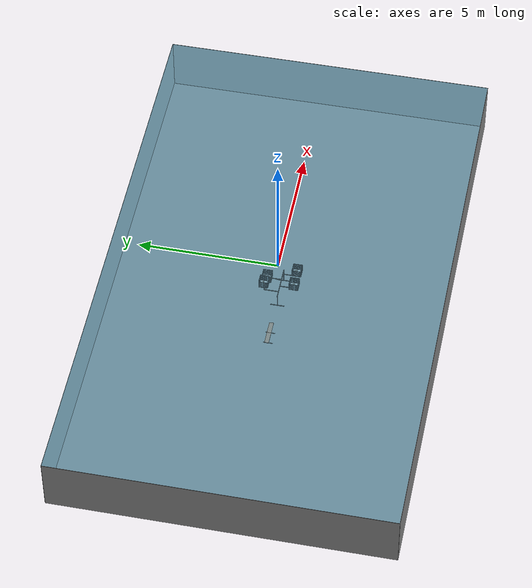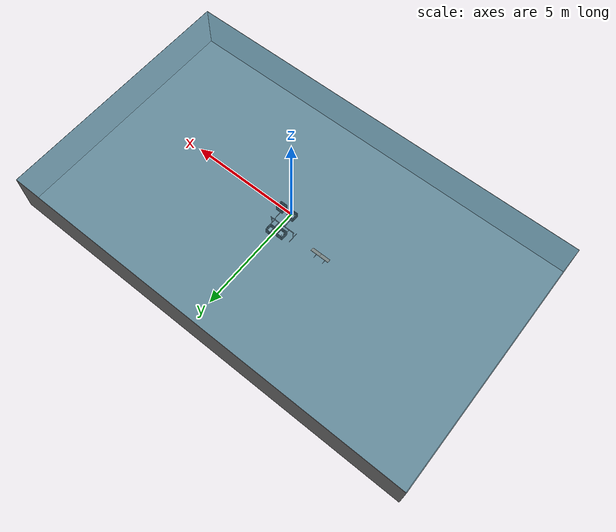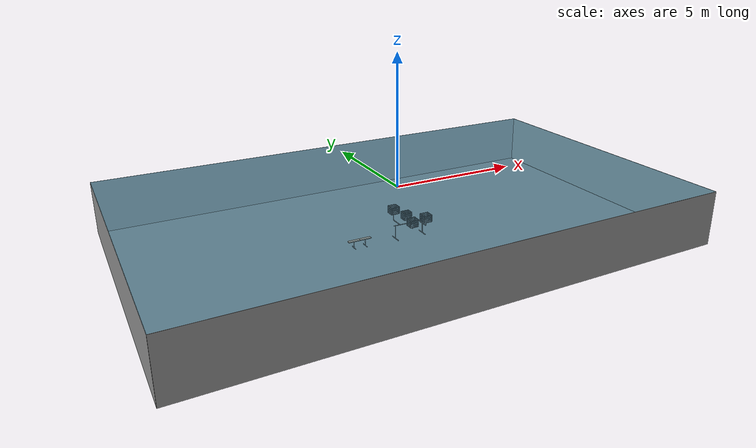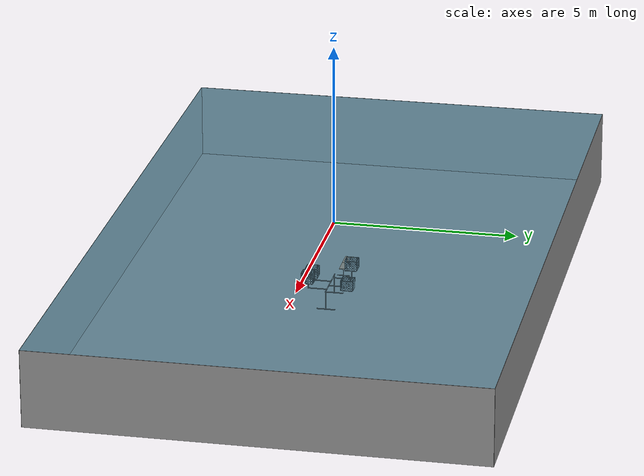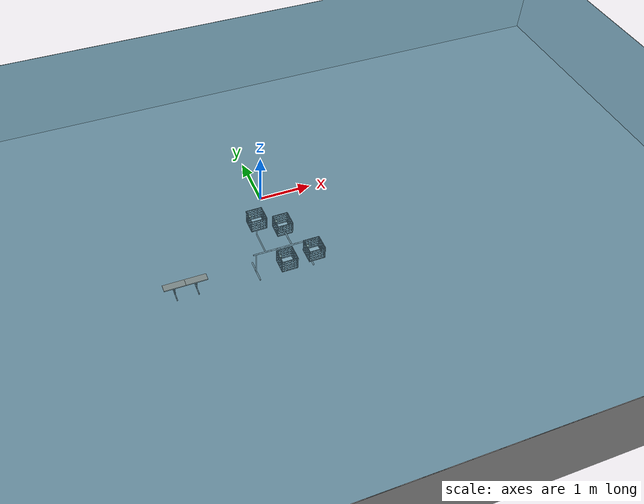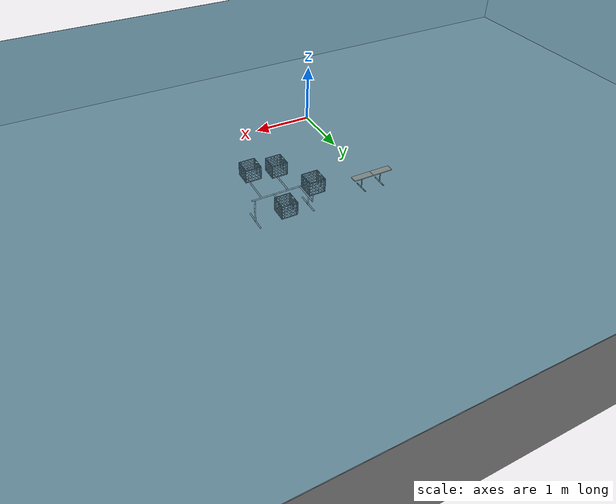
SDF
<sdf version="1.9">
 <world name="rs_task_bins">
  <plugin filename="gz-sim-particle-emitter-system" name="gz::sim::systems::ParticleEmitter"/>
  <plugin filename="gz-sim-physics-system" name="gz::sim::systems::Physics"/>
  <plugin filename="gz-sim-user-commands-system" name="gz::sim::systems::UserCommands"/>
  <plugin filename="gz-sim-scene-broadcaster-system" name="gz::sim::systems::SceneBroadcaster"/>
  <plugin filename="gz-sim-apply-link-wrench-system" name="gz::sim::systems::ApplyLinkWrench"/>
  <plugin filename="gz-sim-imu-system" name="gz::sim::systems::Imu"/>
  <plugin filename="gz-sim-sensors-system" name="gz::sim::systems::Sensors">
   <render_engine>ogre2</render_engine>
  </plugin>
  <plugin filename="gz-sim-dvl-system" name="gz::sim::systems::DopplerVelocityLogSystem"/>
  <plugin filename="gz-sim-buoyancy-system" name="gz::sim::systems::Buoyancy">
   <graded_buoyancy>
    <default_density>1000</default_density>
    <density_change><above_depth>0</above_depth><density>1</density></density_change>
   </graded_buoyancy>
   <enable>mongla</enable>
   <enable>payload_shot_0</enable>
   <enable>payload_shot_1</enable>
   <enable>payload_shot_2</enable>
   <enable>payload_shot_3</enable>
   <enable>payload_shot_4</enable>
   <enable>payload_shot_5</enable>
   <enable>payload_shot_6</enable>
   <enable>payload_shot_7</enable>
   <enable>payload_shot_8</enable>
   <enable>payload_shot_9</enable>
   <enable>payload_shot_10</enable>
   <enable>payload_shot_11</enable>
  </plugin>
  <physics name="default" type="dart">
   <max_step_size>0.001</max_step_size>
   <real_time_factor>1.0</real_time_factor>
   <real_time_update_rate>1000</real_time_update_rate>
   <dart>
    <collision_detector>bullet</collision_detector>
    <solver><solver_type>dantzig</solver_type></solver>
   </dart>
  </physics>
  <gravity>0 0 -9.81</gravity>
  <magnetic_field>3.9e-05 1.1e-06 2.6e-05</magnetic_field>
  <atmosphere type="adiabatic"/>
  <scene>
   <ambient>0.28 0.4 0.48 1</ambient>
   <background>0.08 0.26 0.4 1</background>
   <shadows>true</shadows>
   <fog>
    <color>0.14 0.34 0.42 1</color>
    <type>linear</type>
    <start>1.2</start>
    <end>22.0</end>
    <density>0.028</density>
   </fog>
  </scene>
  <light type="directional" name="sun">
   <pose>0 0 10 0 0 0</pose>
   <diffuse>0.48 0.52 0.56 1</diffuse>
   <specular>0.10 0.10 0.11 1</specular>
   <direction>-0.4 0.15 -0.9</direction>
  </light>
  <light type="directional" name="fill">
   <cast_shadows>false</cast_shadows>
   <pose>0 0 5 0 0 0</pose>
   <diffuse>0.22 0.28 0.34 1</diffuse>
   <specular>0.04 0.05 0.06 1</specular>
   <direction>0.3 -0.2 -1</direction>
  </light>
  <light type="directional" name="caustic_fill">
   <cast_shadows>false</cast_shadows>
   <pose>0 0 3 0 0 0</pose>
   <diffuse>0.12 0.22 0.26 1</diffuse>
   <specular>0.02 0.03 0.04 1</specular>
   <direction>0.1 0.35 -0.85</direction>
  </light>
  <model name="robosub_pool">
   <static>true</static>
   <link name="floor">
    <pose>0 0 -2.1 0 0 0</pose>
    <inertial>
     <mass>1000</mass>
     <inertia><ixx>1000</ixx><ixy>0</ixy><ixz>0</ixz><iyy>1000</iyy><iyz>0</iyz><izz>1000</izz></inertia>
    </inertial>
    <visual name="floor_visual">
     <pose>0 0 0.005 0 0 0</pose>
     <geometry><box><size>20 12 0.01</size></box></geometry>
     <material>
      <ambient>0.55 0.55 0.55 1</ambient>
      <diffuse>0.55 0.55 0.55 1</diffuse>
      <specular>0.08 0.08 0.08 1</specular>
      <emissive>0 0 0 1</emissive>
      <pbr>
       <metal>
        <albedo_map>model://robosub_textures/pool_floor.png</albedo_map>
        <metalness>0.0</metalness>
        <roughness>0.85</roughness>
       </metal>
      </pbr>
     </material>
    </visual>
    <collision name="floor_collision">
     <pose>0 0 -0.05 0 0 0</pose>
     <geometry><box><size>20 12 0.1</size></box></geometry>
    </collision>
   </link>
   <link name="wall_x_pos">
    <inertial>
     <mass>1000</mass>
     <inertia><ixx>1000</ixx><ixy>0</ixy><ixz>0</ixz><iyy>1000</iyy><iyz>0</iyz><izz>1000</izz></inertia>
    </inertial>
    <visual name="wall_x_pos_visual">
     <pose>10 0 -1.05 0 0 0</pose>
     <geometry><box><size>0.01 12 2.1</size></box></geometry>
     <material>
      <ambient>0.55 0.55 0.55 1</ambient>
      <diffuse>0.55 0.55 0.55 1</diffuse>
      <specular>0.08 0.08 0.08 1</specular>
      <emissive>0 0 0 1</emissive>
      <pbr>
       <metal>
        <albedo_map>model://robosub_textures/pool_wall_long.png</albedo_map>
        <metalness>0.0</metalness>
        <roughness>0.85</roughness>
       </metal>
      </pbr>
     </material>
    </visual>
    <collision name="wall_x_pos_collision">
     <pose>10.105 0 -1.05 0 0 0</pose>
     <geometry><box><size>0.2 12.4 2.1</size></box></geometry>
    </collision>
   </link>
   <link name="wall_x_neg">
    <inertial>
     <mass>1000</mass>
     <inertia><ixx>1000</ixx><ixy>0</ixy><ixz>0</ixz><iyy>1000</iyy><iyz>0</iyz><izz>1000</izz></inertia>
    </inertial>
    <visual name="wall_x_neg_visual">
     <pose>-10 0 -1.05 0 0 0</pose>
     <geometry><box><size>0.01 12 2.1</size></box></geometry>
     <material>
      <ambient>0.55 0.55 0.55 1</ambient>
      <diffuse>0.55 0.55 0.55 1</diffuse>
      <specular>0.08 0.08 0.08 1</specular>
      <emissive>0 0 0 1</emissive>
      <pbr>
       <metal>
        <albedo_map>model://robosub_textures/pool_wall_long.png</albedo_map>
        <metalness>0.0</metalness>
        <roughness>0.85</roughness>
       </metal>
      </pbr>
     </material>
    </visual>
    <collision name="wall_x_neg_collision">
     <pose>-10.105 0 -1.05 0 0 0</pose>
     <geometry><box><size>0.2 12.4 2.1</size></box></geometry>
    </collision>
   </link>
   <link name="wall_y_pos">
    <inertial>
     <mass>1000</mass>
     <inertia><ixx>1000</ixx><ixy>0</ixy><ixz>0</ixz><iyy>1000</iyy><iyz>0</iyz><izz>1000</izz></inertia>
    </inertial>
    <visual name="wall_y_pos_visual">
     <pose>0 6 -1.05 0 0 0</pose>
     <geometry><box><size>20 0.01 2.1</size></box></geometry>
     <material>
      <ambient>0.55 0.55 0.55 1</ambient>
      <diffuse>0.55 0.55 0.55 1</diffuse>
      <specular>0.08 0.08 0.08 1</specular>
      <emissive>0 0 0 1</emissive>
      <pbr>
       <metal>
        <albedo_map>model://robosub_textures/pool_wall_short.png</albedo_map>
        <metalness>0.0</metalness>
        <roughness>0.85</roughness>
       </metal>
      </pbr>
     </material>
    </visual>
    <collision name="wall_y_pos_collision">
     <pose>0 6.105 -1.05 0 0 0</pose>
     <geometry><box><size>20 0.2 2.1</size></box></geometry>
    </collision>
   </link>
   <link name="wall_y_neg">
    <inertial>
     <mass>1000</mass>
     <inertia><ixx>1000</ixx><ixy>0</ixy><ixz>0</ixz><iyy>1000</iyy><iyz>0</iyz><izz>1000</izz></inertia>
    </inertial>
    <visual name="wall_y_neg_visual">
     <pose>0 -6 -1.05 0 0 0</pose>
     <geometry><box><size>20 0.01 2.1</size></box></geometry>
     <material>
      <ambient>0.55 0.55 0.55 1</ambient>
      <diffuse>0.55 0.55 0.55 1</diffuse>
      <specular>0.08 0.08 0.08 1</specular>
      <emissive>0 0 0 1</emissive>
      <pbr>
       <metal>
        <albedo_map>model://robosub_textures/pool_wall_short.png</albedo_map>
        <metalness>0.0</metalness>
        <roughness>0.85</roughness>
       </metal>
      </pbr>
     </material>
    </visual>
    <collision name="wall_y_neg_collision">
     <pose>0 -6.105 -1.05 0 0 0</pose>
     <geometry><box><size>20 0.2 2.1</size></box></geometry>
    </collision>
   </link>
   <link name="water_surface">
    <inertial>
     <mass>1</mass>
     <inertia><ixx>1</ixx><ixy>0</ixy><ixz>0</ixz><iyy>1</iyy><iyz>0</iyz><izz>1</izz></inertia>
    </inertial>
    <visual name="water_surface_visual">
     <cast_shadows>false</cast_shadows>
     <transparency>0.18</transparency>
     <geometry><mesh><uri>model://robosub_meshes/meshes/water_robosub.obj</uri></mesh></geometry>
     <material>
      <ambient>0.42 0.6 0.68 1</ambient>
      <diffuse>0.42 0.6 0.68 1</diffuse>
      <specular>0.35 0.35 0.35 1</specular>
      <emissive>0.1 0.1 0.1 1</emissive>
      <pbr>
       <metal>
        <albedo_map>model://robosub_textures/water_surface.png</albedo_map>
        <metalness>0.0</metalness>
        <roughness>0.15</roughness>
       </metal>
      </pbr>
     </material>
    </visual>
   </link>
  </model>
  <model name="marine_snow">
   <static>true</static>
   <pose>0 0 -1.05 0 0 0</pose>
   <link name="link">
    <particle_emitter name="snow" type="box">
     <emitting>true</emitting>
     <size>12 12 2.1</size>
     <particle_size>0.006 0.006 0.006</particle_size>
     <lifetime>30</lifetime>
     <min_velocity>0.004</min_velocity>
     <max_velocity>0.025</max_velocity>
     <scale_rate>0</scale_rate>
     <rate>900</rate>
     <topic>marine_snow</topic>
     <material>
      <diffuse>0.80 0.84 0.80</diffuse>
      <specular>0.05 0.05 0.05</specular>
      <pbr><metal><albedo_map>model://robosub_textures/marine_snow.png</albedo_map></metal></pbr>
     </material>
    </particle_emitter>
   </link>
  </model>
  <include><uri>model://robosub_bins</uri><name>bins</name><pose>0.5 0 -2.1 0 0 0</pose></include>
  <include><uri>model://robosub_path_marker</uri><name>path_in</name><pose>-1.6 0 -2.1 0 0 0</pose></include>
 </world>
</sdf>

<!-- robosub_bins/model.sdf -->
<sdf version="1.9">
  <model name="robosub_bins">
    <static>true</static>
    <plugin filename="gz-sim-label-system" name="gz::sim::systems::Label">
      <label>14</label>
    </plugin>
    <link name="spine">
      <pose>0 0 0.55 0 1.5708 0</pose>
      <inertial>
        <pose>0 0 0 0 0 0</pose>
        <mass>1</mass>
        <inertia>
          <ixx>0.140878</ixx><ixy>0</ixy><ixz>0</ixz>
          <iyy>0.140878</iyy><iyz>0</iyz>
          <izz>8.8445e-05</izz>
        </inertia>
      </inertial>
      <visual name="spine_visual">
        <pose>0 0 0 0 0 0</pose>
        <geometry><cylinder><radius>0.0133</radius><length>1.3</length></cylinder></geometry>
        <material>
          <ambient>0.92 0.92 0.92 1</ambient>
          <diffuse>0.92 0.92 0.92 1</diffuse>
          <specular>0.55 0.55 0.55 1</specular>
          <emissive>0.258 0.258 0.258 1</emissive>
          <pbr>
            <metal>
              <albedo_map>model://robosub_textures/albedo_pvc.png</albedo_map>
              <metalness>0.0</metalness>
              <roughness_map>model://robosub_textures/rough_pvc.png</roughness_map>
              <normal_map>model://robosub_textures/norm_pvc.png</normal_map>
            </metal>
          </pbr>
        </material>
      </visual>
      <collision name="spine_collision">
        <pose>0 0 0 0 0 0</pose>
        <geometry><cylinder><radius>0.0133</radius><length>1.3</length></cylinder></geometry>
      </collision>
    </link>
    <link name="foot_riser_0">
      <pose>-0.590909 0 0.275 0 0 0</pose>
      <inertial>
        <pose>0 0 0 0 0 0</pose>
        <mass>1</mass>
        <inertia>
          <ixx>0.0252526</ixx><ixy>0</ixy><ixz>0</ixz>
          <iyy>0.0252526</iyy><iyz>0</iyz>
          <izz>8.8445e-05</izz>
        </inertia>
      </inertial>
      <visual name="foot_riser_0_visual">
        <pose>0 0 0 0 0 0</pose>
        <geometry><cylinder><radius>0.0133</radius><length>0.55</length></cylinder></geometry>
        <material>
          <ambient>0.92 0.92 0.92 1</ambient>
          <diffuse>0.92 0.92 0.92 1</diffuse>
          <specular>0.55 0.55 0.55 1</specular>
          <emissive>0.258 0.258 0.258 1</emissive>
          <pbr>
            <metal>
              <albedo_map>model://robosub_textures/albedo_pvc.png</albedo_map>
              <metalness>0.0</metalness>
              <roughness_map>model://robosub_textures/rough_pvc.png</roughness_map>
              <normal_map>model://robosub_textures/norm_pvc.png</normal_map>
            </metal>
          </pbr>
        </material>
      </visual>
      <collision name="foot_riser_0_collision">
        <pose>0 0 0 0 0 0</pose>
        <geometry><cylinder><radius>0.0133</radius><length>0.55</length></cylinder></geometry>
      </collision>
    </link>
    <link name="foot_0">
      <pose>-0.590909 0 0.03 1.5708 0 0</pose>
      <inertial>
        <pose>0 0 0 0 0 0</pose>
        <mass>1</mass>
        <inertia>
          <ixx>0.0208776</ixx><ixy>0</ixy><ixz>0</ixz>
          <iyy>0.0208776</iyy><iyz>0</iyz>
          <izz>8.8445e-05</izz>
        </inertia>
      </inertial>
      <visual name="foot_0_visual">
        <pose>0 0 0 0 0 0</pose>
        <geometry><cylinder><radius>0.0133</radius><length>0.5</length></cylinder></geometry>
        <material>
          <ambient>0.92 0.92 0.92 1</ambient>
          <diffuse>0.92 0.92 0.92 1</diffuse>
          <specular>0.55 0.55 0.55 1</specular>
          <emissive>0.258 0.258 0.258 1</emissive>
          <pbr>
            <metal>
              <albedo_map>model://robosub_textures/albedo_pvc.png</albedo_map>
              <metalness>0.0</metalness>
              <roughness_map>model://robosub_textures/rough_pvc.png</roughness_map>
              <normal_map>model://robosub_textures/norm_pvc.png</normal_map>
            </metal>
          </pbr>
        </material>
      </visual>
      <collision name="foot_0_collision">
        <pose>0 0 0 0 0 0</pose>
        <geometry><cylinder><radius>0.0133</radius><length>0.5</length></cylinder></geometry>
      </collision>
    </link>
    <link name="foot_riser_1">
      <pose>0.590909 0 0.275 0 0 0</pose>
      <inertial>
        <pose>0 0 0 0 0 0</pose>
        <mass>1</mass>
        <inertia>
          <ixx>0.0252526</ixx><ixy>0</ixy><ixz>0</ixz>
          <iyy>0.0252526</iyy><iyz>0</iyz>
          <izz>8.8445e-05</izz>
        </inertia>
      </inertial>
      <visual name="foot_riser_1_visual">
        <pose>0 0 0 0 0 0</pose>
        <geometry><cylinder><radius>0.0133</radius><length>0.55</length></cylinder></geometry>
        <material>
          <ambient>0.92 0.92 0.92 1</ambient>
          <diffuse>0.92 0.92 0.92 1</diffuse>
          <specular>0.55 0.55 0.55 1</specular>
          <emissive>0.258 0.258 0.258 1</emissive>
          <pbr>
            <metal>
              <albedo_map>model://robosub_textures/albedo_pvc.png</albedo_map>
              <metalness>0.0</metalness>
              <roughness_map>model://robosub_textures/rough_pvc.png</roughness_map>
              <normal_map>model://robosub_textures/norm_pvc.png</normal_map>
            </metal>
          </pbr>
        </material>
      </visual>
      <collision name="foot_riser_1_collision">
        <pose>0 0 0 0 0 0</pose>
        <geometry><cylinder><radius>0.0133</radius><length>0.55</length></cylinder></geometry>
      </collision>
    </link>
    <link name="foot_1">
      <pose>0.590909 0 0.03 1.5708 0 0</pose>
      <inertial>
        <pose>0 0 0 0 0 0</pose>
        <mass>1</mass>
        <inertia>
          <ixx>0.0208776</ixx><ixy>0</ixy><ixz>0</ixz>
          <iyy>0.0208776</iyy><iyz>0</iyz>
          <izz>8.8445e-05</izz>
        </inertia>
      </inertial>
      <visual name="foot_1_visual">
        <pose>0 0 0 0 0 0</pose>
        <geometry><cylinder><radius>0.0133</radius><length>0.5</length></cylinder></geometry>
        <material>
          <ambient>0.92 0.92 0.92 1</ambient>
          <diffuse>0.92 0.92 0.92 1</diffuse>
          <specular>0.55 0.55 0.55 1</specular>
          <emissive>0.258 0.258 0.258 1</emissive>
          <pbr>
            <metal>
              <albedo_map>model://robosub_textures/albedo_pvc.png</albedo_map>
              <metalness>0.0</metalness>
              <roughness_map>model://robosub_textures/rough_pvc.png</roughness_map>
              <normal_map>model://robosub_textures/norm_pvc.png</normal_map>
            </metal>
          </pbr>
        </material>
      </visual>
      <collision name="foot_1_collision">
        <pose>0 0 0 0 0 0</pose>
        <geometry><cylinder><radius>0.0133</radius><length>0.5</length></cylinder></geometry>
      </collision>
    </link>
    <link name="arm_sr_a">
      <pose>-0.39 0.26 0.55 1.5708 0 0</pose>
      <inertial>
        <pose>0 0 0 0 0 0</pose>
        <mass>1</mass>
        <inertia>
          <ixx>0.0225776</ixx><ixy>0</ixy><ixz>0</ixz>
          <iyy>0.0225776</iyy><iyz>0</iyz>
          <izz>8.8445e-05</izz>
        </inertia>
      </inertial>
      <visual name="arm_sr_a_visual">
        <pose>0 0 0 0 0 0</pose>
        <geometry><cylinder><radius>0.0133</radius><length>0.52</length></cylinder></geometry>
        <material>
          <ambient>0.92 0.92 0.92 1</ambient>
          <diffuse>0.92 0.92 0.92 1</diffuse>
          <specular>0.55 0.55 0.55 1</specular>
          <emissive>0.258 0.258 0.258 1</emissive>
          <pbr>
            <metal>
              <albedo_map>model://robosub_textures/albedo_pvc.png</albedo_map>
              <metalness>0.0</metalness>
              <roughness_map>model://robosub_textures/rough_pvc.png</roughness_map>
              <normal_map>model://robosub_textures/norm_pvc.png</normal_map>
            </metal>
          </pbr>
        </material>
      </visual>
      <collision name="arm_sr_a_collision">
        <pose>0 0 0 0 0 0</pose>
        <geometry><cylinder><radius>0.0133</radius><length>0.52</length></cylinder></geometry>
      </collision>
    </link>
    <link name="riser_sr_a">
      <pose>-0.39 0.52 0.7 0 0 0</pose>
      <inertial>
        <pose>0 0 0 0 0 0</pose>
        <mass>1</mass>
        <inertia>
          <ixx>0.00857756</ixx><ixy>0</ixy><ixz>0</ixz>
          <iyy>0.00857756</iyy><iyz>0</iyz>
          <izz>8.8445e-05</izz>
        </inertia>
      </inertial>
      <visual name="riser_sr_a_visual">
        <pose>0 0 0 0 0 0</pose>
        <geometry><cylinder><radius>0.0133</radius><length>0.32</length></cylinder></geometry>
        <material>
          <ambient>0.92 0.92 0.92 1</ambient>
          <diffuse>0.92 0.92 0.92 1</diffuse>
          <specular>0.55 0.55 0.55 1</specular>
          <emissive>0.258 0.258 0.258 1</emissive>
          <pbr>
            <metal>
              <albedo_map>model://robosub_textures/albedo_pvc.png</albedo_map>
              <metalness>0.0</metalness>
              <roughness_map>model://robosub_textures/rough_pvc.png</roughness_map>
              <normal_map>model://robosub_textures/norm_pvc.png</normal_map>
            </metal>
          </pbr>
        </material>
      </visual>
      <collision name="riser_sr_a_collision">
        <pose>0 0 0 0 0 0</pose>
        <geometry><cylinder><radius>0.0133</radius><length>0.32</length></cylinder></geometry>
      </collision>
    </link>
    <link name="crate_sr_a_floor">
      <pose>-0.39 0.52 0.85 0 0 0</pose>
      <inertial>
        <pose>0 0 0 0 0 0</pose>
        <mass>1</mass>
        <inertia>
          <ixx>0.00936408</ixx><ixy>0</ixy><ixz>0</ixz>
          <iyy>0.00936408</iyy><iyz>0</iyz>
          <izz>0.0187042</izz>
        </inertia>
      </inertial>
      <visual name="crate_sr_a_floor_visual">
        <pose>0 0 0 0 0 0</pose>
        <geometry><box><size>0.335 0.335 0.012</size></box></geometry>
        <material>
          <ambient>1 1 1 1</ambient>
          <diffuse>1 1 1 1</diffuse>
          <specular>0.06 0.06 0.06 1</specular>
          <emissive>0.1 0.1 0.1 1</emissive>
          <pbr>
            <metal>
              <albedo_map>model://robosub_textures/role_fire.png</albedo_map>
              <metalness>0.0</metalness>
              <roughness>0.55</roughness>
            </metal>
          </pbr>
        </material>
      </visual>
      <collision name="crate_sr_a_floor_collision">
        <pose>0 0 0 0 0 0</pose>
        <geometry><box><size>0.335 0.335 0.012</size></box></geometry>
      </collision>
    </link>
    <link name="crate_sr_a_xp">
      <pose>-0.2285 0.52 0.99 0 0 0</pose>
      <inertial>
        <pose>0 0 0 0 0 0</pose>
        <mass>0.5</mass>
        <inertia>
          <ixx>0.00794271</ixx><ixy>0</ixy><ixz>0</ixz>
          <iyy>0.00327267</iyy><iyz>0</iyz>
          <izz>0.00468204</izz>
        </inertia>
      </inertial>
      <visual name="crate_sr_a_xp_visual">
        <pose>0 0 0 0 0 0</pose>
        <geometry><mesh><uri>model://robosub_meshes/meshes/crate_wall.obj</uri></mesh></geometry>
        <material>
          <ambient>0.18 0.18 0.2 1</ambient>
          <diffuse>0.18 0.18 0.2 1</diffuse>
          <specular>0.14 0.14 0.14 1</specular>
          <emissive>0.04 0.04 0.04 1</emissive>
          <pbr>
            <metal>
              <albedo_map>model://robosub_textures/albedo_plastic.png</albedo_map>
              <metalness>0.0</metalness>
              <roughness_map>model://robosub_textures/rough_plastic.png</roughness_map>
              <normal_map>model://robosub_textures/norm_plastic.png</normal_map>
              <double_sided>true</double_sided>
            </metal>
          </pbr>
        </material>
      </visual>
      <collision name="crate_sr_a_xp_collision">
        <pose>0 0 0 0 0 0</pose>
        <geometry><box><size>0.012 0.335 0.28</size></box></geometry>
      </collision>
    </link>
    <link name="crate_sr_a_xn">
      <pose>-0.5515 0.52 0.99 0 0 0</pose>
      <inertial>
        <pose>0 0 0 0 0 0</pose>
        <mass>0.5</mass>
        <inertia>
          <ixx>0.00794271</ixx><ixy>0</ixy><ixz>0</ixz>
          <iyy>0.00327267</iyy><iyz>0</iyz>
          <izz>0.00468204</izz>
        </inertia>
      </inertial>
      <visual name="crate_sr_a_xn_visual">
        <pose>0 0 0 0 0 0</pose>
        <geometry><mesh><uri>model://robosub_meshes/meshes/crate_wall.obj</uri></mesh></geometry>
        <material>
          <ambient>0.18 0.18 0.2 1</ambient>
          <diffuse>0.18 0.18 0.2 1</diffuse>
          <specular>0.14 0.14 0.14 1</specular>
          <emissive>0.04 0.04 0.04 1</emissive>
          <pbr>
            <metal>
              <albedo_map>model://robosub_textures/albedo_plastic.png</albedo_map>
              <metalness>0.0</metalness>
              <roughness_map>model://robosub_textures/rough_plastic.png</roughness_map>
              <normal_map>model://robosub_textures/norm_plastic.png</normal_map>
              <double_sided>true</double_sided>
            </metal>
          </pbr>
        </material>
      </visual>
      <collision name="crate_sr_a_xn_collision">
        <pose>0 0 0 0 0 0</pose>
        <geometry><box><size>0.012 0.335 0.28</size></box></geometry>
      </collision>
    </link>
    <link name="crate_sr_a_yp">
      <pose>-0.39 0.6815 0.99 0 0 1.5708</pose>
      <inertial>
        <pose>0 0 0 0 0 0</pose>
        <mass>0.5</mass>
        <inertia>
          <ixx>0.00327267</ixx><ixy>0</ixy><ixz>0</ixz>
          <iyy>0.00794271</iyy><iyz>0</iyz>
          <izz>0.00468204</izz>
        </inertia>
      </inertial>
      <visual name="crate_sr_a_yp_visual">
        <pose>0 0 0 0 0 0</pose>
        <geometry><mesh><uri>model://robosub_meshes/meshes/crate_wall.obj</uri></mesh></geometry>
        <material>
          <ambient>0.18 0.18 0.2 1</ambient>
          <diffuse>0.18 0.18 0.2 1</diffuse>
          <specular>0.14 0.14 0.14 1</specular>
          <emissive>0.04 0.04 0.04 1</emissive>
          <pbr>
            <metal>
              <albedo_map>model://robosub_textures/albedo_plastic.png</albedo_map>
              <metalness>0.0</metalness>
              <roughness_map>model://robosub_textures/rough_plastic.png</roughness_map>
              <normal_map>model://robosub_textures/norm_plastic.png</normal_map>
              <double_sided>true</double_sided>
            </metal>
          </pbr>
        </material>
      </visual>
      <collision name="crate_sr_a_yp_collision">
        <pose>0 0 0 0 0 0</pose>
        <geometry><box><size>0.335 0.012 0.28</size></box></geometry>
      </collision>
    </link>
    <link name="crate_sr_a_yn">
      <pose>-0.39 0.3585 0.99 0 0 1.5708</pose>
      <inertial>
        <pose>0 0 0 0 0 0</pose>
        <mass>0.5</mass>
        <inertia>
          <ixx>0.00327267</ixx><ixy>0</ixy><ixz>0</ixz>
          <iyy>0.00794271</iyy><iyz>0</iyz>
          <izz>0.00468204</izz>
        </inertia>
      </inertial>
      <visual name="crate_sr_a_yn_visual">
        <pose>0 0 0 0 0 0</pose>
        <geometry><mesh><uri>model://robosub_meshes/meshes/crate_wall.obj</uri></mesh></geometry>
        <material>
          <ambient>0.18 0.18 0.2 1</ambient>
          <diffuse>0.18 0.18 0.2 1</diffuse>
          <specular>0.14 0.14 0.14 1</specular>
          <emissive>0.04 0.04 0.04 1</emissive>
          <pbr>
            <metal>
              <albedo_map>model://robosub_textures/albedo_plastic.png</albedo_map>
              <metalness>0.0</metalness>
              <roughness_map>model://robosub_textures/rough_plastic.png</roughness_map>
              <normal_map>model://robosub_textures/norm_plastic.png</normal_map>
              <double_sided>true</double_sided>
            </metal>
          </pbr>
        </material>
      </visual>
      <collision name="crate_sr_a_yn_collision">
        <pose>0 0 0 0 0 0</pose>
        <geometry><box><size>0.335 0.012 0.28</size></box></geometry>
      </collision>
    </link>
    <link name="light_sr_a">
      <pose>-0.5309 0.52 1.13 0 0 0</pose>
      <inertial>
        <pose>0 0 0 0 0 0</pose>
        <mass>0.05</mass>
        <inertia>
          <ixx>8.79883e-06</ixx><ixy>0</ixy><ixz>0</ixz>
          <iyy>8.79883e-06</iyy><iyz>0</iyz>
          <izz>1.59643e-05</izz>
        </inertia>
      </inertial>
      <visual name="light_sr_a_visual">
        <pose>0 0 0 0 0 0</pose>
        <geometry><cylinder><radius>0.02527</radius><length>0.014</length></cylinder></geometry>
        <material>
          <ambient>1 0.92 0.55 1</ambient>
          <diffuse>1 0.92 0.55 1</diffuse>
          <specular>0.2 0.2 0.2 1</specular>
          <emissive>0.85 0.782 0.4675 1</emissive>
        </material>
      </visual>
    </link>
    <link name="arm_rescue_a">
      <pose>-0.13 -0.26 0.55 1.5708 0 0</pose>
      <inertial>
        <pose>0 0 0 0 0 0</pose>
        <mass>1</mass>
        <inertia>
          <ixx>0.0225776</ixx><ixy>0</ixy><ixz>0</ixz>
          <iyy>0.0225776</iyy><iyz>0</iyz>
          <izz>8.8445e-05</izz>
        </inertia>
      </inertial>
      <visual name="arm_rescue_a_visual">
        <pose>0 0 0 0 0 0</pose>
        <geometry><cylinder><radius>0.0133</radius><length>0.52</length></cylinder></geometry>
        <material>
          <ambient>0.92 0.92 0.92 1</ambient>
          <diffuse>0.92 0.92 0.92 1</diffuse>
          <specular>0.55 0.55 0.55 1</specular>
          <emissive>0.258 0.258 0.258 1</emissive>
          <pbr>
            <metal>
              <albedo_map>model://robosub_textures/albedo_pvc.png</albedo_map>
              <metalness>0.0</metalness>
              <roughness_map>model://robosub_textures/rough_pvc.png</roughness_map>
              <normal_map>model://robosub_textures/norm_pvc.png</normal_map>
            </metal>
          </pbr>
        </material>
      </visual>
      <collision name="arm_rescue_a_collision">
        <pose>0 0 0 0 0 0</pose>
        <geometry><cylinder><radius>0.0133</radius><length>0.52</length></cylinder></geometry>
      </collision>
    </link>
    <link name="riser_rescue_a">
      <pose>-0.13 -0.52 0.6 0 0 0</pose>
      <inertial>
        <pose>0 0 0 0 0 0</pose>
        <mass>1</mass>
        <inertia>
          <ixx>0.00124422</ixx><ixy>0</ixy><ixz>0</ixz>
          <iyy>0.00124422</iyy><iyz>0</iyz>
          <izz>8.8445e-05</izz>
        </inertia>
      </inertial>
      <visual name="riser_rescue_a_visual">
        <pose>0 0 0 0 0 0</pose>
        <geometry><cylinder><radius>0.0133</radius><length>0.12</length></cylinder></geometry>
        <material>
          <ambient>0.92 0.92 0.92 1</ambient>
          <diffuse>0.92 0.92 0.92 1</diffuse>
          <specular>0.55 0.55 0.55 1</specular>
          <emissive>0.258 0.258 0.258 1</emissive>
          <pbr>
            <metal>
              <albedo_map>model://robosub_textures/albedo_pvc.png</albedo_map>
              <metalness>0.0</metalness>
              <roughness_map>model://robosub_textures/rough_pvc.png</roughness_map>
              <normal_map>model://robosub_textures/norm_pvc.png</normal_map>
            </metal>
          </pbr>
        </material>
      </visual>
      <collision name="riser_rescue_a_collision">
        <pose>0 0 0 0 0 0</pose>
        <geometry><cylinder><radius>0.0133</radius><length>0.12</length></cylinder></geometry>
      </collision>
    </link>
    <link name="crate_rescue_a_floor">
      <pose>-0.13 -0.52 0.65 0 0 0</pose>
      <inertial>
        <pose>0 0 0 0 0 0</pose>
        <mass>1</mass>
        <inertia>
          <ixx>0.00936408</ixx><ixy>0</ixy><ixz>0</ixz>
          <iyy>0.00936408</iyy><iyz>0</iyz>
          <izz>0.0187042</izz>
        </inertia>
      </inertial>
      <visual name="crate_rescue_a_floor_visual">
        <pose>0 0 0 0 0 0</pose>
        <geometry><box><size>0.335 0.335 0.012</size></box></geometry>
        <material>
          <ambient>1 1 1 1</ambient>
          <diffuse>1 1 1 1</diffuse>
          <specular>0.06 0.06 0.06 1</specular>
          <emissive>0.1 0.1 0.1 1</emissive>
          <pbr>
            <metal>
              <albedo_map>model://robosub_textures/role_droplet.png</albedo_map>
              <metalness>0.0</metalness>
              <roughness>0.55</roughness>
            </metal>
          </pbr>
        </material>
      </visual>
      <collision name="crate_rescue_a_floor_collision">
        <pose>0 0 0 0 0 0</pose>
        <geometry><box><size>0.335 0.335 0.012</size></box></geometry>
      </collision>
    </link>
    <link name="crate_rescue_a_xp">
      <pose>0.0315 -0.52 0.79 0 0 0</pose>
      <inertial>
        <pose>0 0 0 0 0 0</pose>
        <mass>0.5</mass>
        <inertia>
          <ixx>0.00794271</ixx><ixy>0</ixy><ixz>0</ixz>
          <iyy>0.00327267</iyy><iyz>0</iyz>
          <izz>0.00468204</izz>
        </inertia>
      </inertial>
      <visual name="crate_rescue_a_xp_visual">
        <pose>0 0 0 0 0 0</pose>
        <geometry><mesh><uri>model://robosub_meshes/meshes/crate_wall.obj</uri></mesh></geometry>
        <material>
          <ambient>0.18 0.18 0.2 1</ambient>
          <diffuse>0.18 0.18 0.2 1</diffuse>
          <specular>0.14 0.14 0.14 1</specular>
          <emissive>0.04 0.04 0.04 1</emissive>
          <pbr>
            <metal>
              <albedo_map>model://robosub_textures/albedo_plastic.png</albedo_map>
              <metalness>0.0</metalness>
              <roughness_map>model://robosub_textures/rough_plastic.png</roughness_map>
              <normal_map>model://robosub_textures/norm_plastic.png</normal_map>
              <double_sided>true</double_sided>
            </metal>
          </pbr>
        </material>
      </visual>
      <collision name="crate_rescue_a_xp_collision">
        <pose>0 0 0 0 0 0</pose>
        <geometry><box><size>0.012 0.335 0.28</size></box></geometry>
      </collision>
    </link>
    <link name="crate_rescue_a_xn">
      <pose>-0.2915 -0.52 0.79 0 0 0</pose>
      <inertial>
        <pose>0 0 0 0 0 0</pose>
        <mass>0.5</mass>
        <inertia>
          <ixx>0.00794271</ixx><ixy>0</ixy><ixz>0</ixz>
          <iyy>0.00327267</iyy><iyz>0</iyz>
          <izz>0.00468204</izz>
        </inertia>
      </inertial>
      <visual name="crate_rescue_a_xn_visual">
        <pose>0 0 0 0 0 0</pose>
        <geometry><mesh><uri>model://robosub_meshes/meshes/crate_wall.obj</uri></mesh></geometry>
        <material>
          <ambient>0.18 0.18 0.2 1</ambient>
          <diffuse>0.18 0.18 0.2 1</diffuse>
          <specular>0.14 0.14 0.14 1</specular>
          <emissive>0.04 0.04 0.04 1</emissive>
          <pbr>
            <metal>
              <albedo_map>model://robosub_textures/albedo_plastic.png</albedo_map>
              <metalness>0.0</metalness>
              <roughness_map>model://robosub_textures/rough_plastic.png</roughness_map>
              <normal_map>model://robosub_textures/norm_plastic.png</normal_map>
              <double_sided>true</double_sided>
            </metal>
          </pbr>
        </material>
      </visual>
      <collision name="crate_rescue_a_xn_collision">
        <pose>0 0 0 0 0 0</pose>
        <geometry><box><size>0.012 0.335 0.28</size></box></geometry>
      </collision>
    </link>
    <link name="crate_rescue_a_yp">
      <pose>-0.13 -0.3585 0.79 0 0 1.5708</pose>
      <inertial>
        <pose>0 0 0 0 0 0</pose>
        <mass>0.5</mass>
        <inertia>
          <ixx>0.00327267</ixx><ixy>0</ixy><ixz>0</ixz>
          <iyy>0.00794271</iyy><iyz>0</iyz>
          <izz>0.00468204</izz>
        </inertia>
      </inertial>
      <visual name="crate_rescue_a_yp_visual">
        <pose>0 0 0 0 0 0</pose>
        <geometry><mesh><uri>model://robosub_meshes/meshes/crate_wall.obj</uri></mesh></geometry>
        <material>
          <ambient>0.18 0.18 0.2 1</ambient>
          <diffuse>0.18 0.18 0.2 1</diffuse>
          <specular>0.14 0.14 0.14 1</specular>
          <emissive>0.04 0.04 0.04 1</emissive>
          <pbr>
            <metal>
              <albedo_map>model://robosub_textures/albedo_plastic.png</albedo_map>
              <metalness>0.0</metalness>
              <roughness_map>model://robosub_textures/rough_plastic.png</roughness_map>
              <normal_map>model://robosub_textures/norm_plastic.png</normal_map>
              <double_sided>true</double_sided>
            </metal>
          </pbr>
        </material>
      </visual>
      <collision name="crate_rescue_a_yp_collision">
        <pose>0 0 0 0 0 0</pose>
        <geometry><box><size>0.335 0.012 0.28</size></box></geometry>
      </collision>
    </link>
    <link name="crate_rescue_a_yn">
      <pose>-0.13 -0.6815 0.79 0 0 1.5708</pose>
      <inertial>
        <pose>0 0 0 0 0 0</pose>
        <mass>0.5</mass>
        <inertia>
          <ixx>0.00327267</ixx><ixy>0</ixy><ixz>0</ixz>
          <iyy>0.00794271</iyy><iyz>0</iyz>
          <izz>0.00468204</izz>
        </inertia>
      </inertial>
      <visual name="crate_rescue_a_yn_visual">
        <pose>0 0 0 0 0 0</pose>
        <geometry><mesh><uri>model://robosub_meshes/meshes/crate_wall.obj</uri></mesh></geometry>
        <material>
          <ambient>0.18 0.18 0.2 1</ambient>
          <diffuse>0.18 0.18 0.2 1</diffuse>
          <specular>0.14 0.14 0.14 1</specular>
          <emissive>0.04 0.04 0.04 1</emissive>
          <pbr>
            <metal>
              <albedo_map>model://robosub_textures/albedo_plastic.png</albedo_map>
              <metalness>0.0</metalness>
              <roughness_map>model://robosub_textures/rough_plastic.png</roughness_map>
              <normal_map>model://robosub_textures/norm_plastic.png</normal_map>
              <double_sided>true</double_sided>
            </metal>
          </pbr>
        </material>
      </visual>
      <collision name="crate_rescue_a_yn_collision">
        <pose>0 0 0 0 0 0</pose>
        <geometry><box><size>0.335 0.012 0.28</size></box></geometry>
      </collision>
    </link>
    <link name="light_rescue_a">
      <pose>-0.2709 -0.52 0.93 0 0 0</pose>
      <inertial>
        <pose>0 0 0 0 0 0</pose>
        <mass>0.05</mass>
        <inertia>
          <ixx>8.79883e-06</ixx><ixy>0</ixy><ixz>0</ixz>
          <iyy>8.79883e-06</iyy><iyz>0</iyz>
          <izz>1.59643e-05</izz>
        </inertia>
      </inertial>
      <visual name="light_rescue_a_visual">
        <pose>0 0 0 0 0 0</pose>
        <geometry><cylinder><radius>0.02527</radius><length>0.014</length></cylinder></geometry>
        <material>
          <ambient>1 0.92 0.55 1</ambient>
          <diffuse>1 0.92 0.55 1</diffuse>
          <specular>0.2 0.2 0.2 1</specular>
          <emissive>0.85 0.782 0.4675 1</emissive>
        </material>
      </visual>
    </link>
    <link name="arm_sr_b">
      <pose>0.182 0.26 0.55 1.5708 0 0</pose>
      <inertial>
        <pose>0 0 0 0 0 0</pose>
        <mass>1</mass>
        <inertia>
          <ixx>0.0225776</ixx><ixy>0</ixy><ixz>0</ixz>
          <iyy>0.0225776</iyy><iyz>0</iyz>
          <izz>8.8445e-05</izz>
        </inertia>
      </inertial>
      <visual name="arm_sr_b_visual">
        <pose>0 0 0 0 0 0</pose>
        <geometry><cylinder><radius>0.0133</radius><length>0.52</length></cylinder></geometry>
        <material>
          <ambient>0.92 0.92 0.92 1</ambient>
          <diffuse>0.92 0.92 0.92 1</diffuse>
          <specular>0.55 0.55 0.55 1</specular>
          <emissive>0.258 0.258 0.258 1</emissive>
          <pbr>
            <metal>
              <albedo_map>model://robosub_textures/albedo_pvc.png</albedo_map>
              <metalness>0.0</metalness>
              <roughness_map>model://robosub_textures/rough_pvc.png</roughness_map>
              <normal_map>model://robosub_textures/norm_pvc.png</normal_map>
            </metal>
          </pbr>
        </material>
      </visual>
      <collision name="arm_sr_b_collision">
        <pose>0 0 0 0 0 0</pose>
        <geometry><cylinder><radius>0.0133</radius><length>0.52</length></cylinder></geometry>
      </collision>
    </link>
    <link name="riser_sr_b">
      <pose>0.182 0.52 0.525 0 0 0</pose>
      <inertial>
        <pose>0 0 0 0 0 0</pose>
        <mass>1</mass>
        <inertia>
          <ixx>0.000452556</ixx><ixy>0</ixy><ixz>0</ixz>
          <iyy>0.000452556</iyy><iyz>0</iyz>
          <izz>8.8445e-05</izz>
        </inertia>
      </inertial>
      <visual name="riser_sr_b_visual">
        <pose>0 0 0 0 0 0</pose>
        <geometry><cylinder><radius>0.0133</radius><length>0.07</length></cylinder></geometry>
        <material>
          <ambient>0.92 0.92 0.92 1</ambient>
          <diffuse>0.92 0.92 0.92 1</diffuse>
          <specular>0.55 0.55 0.55 1</specular>
          <emissive>0.258 0.258 0.258 1</emissive>
          <pbr>
            <metal>
              <albedo_map>model://robosub_textures/albedo_pvc.png</albedo_map>
              <metalness>0.0</metalness>
              <roughness_map>model://robosub_textures/rough_pvc.png</roughness_map>
              <normal_map>model://robosub_textures/norm_pvc.png</normal_map>
            </metal>
          </pbr>
        </material>
      </visual>
      <collision name="riser_sr_b_collision">
        <pose>0 0 0 0 0 0</pose>
        <geometry><cylinder><radius>0.0133</radius><length>0.07</length></cylinder></geometry>
      </collision>
    </link>
    <link name="crate_sr_b_floor">
      <pose>0.182 0.52 0.5 0 0 0</pose>
      <inertial>
        <pose>0 0 0 0 0 0</pose>
        <mass>1</mass>
        <inertia>
          <ixx>0.00936408</ixx><ixy>0</ixy><ixz>0</ixz>
          <iyy>0.00936408</iyy><iyz>0</iyz>
          <izz>0.0187042</izz>
        </inertia>
      </inertial>
      <visual name="crate_sr_b_floor_visual">
        <pose>0 0 0 0 0 0</pose>
        <geometry><box><size>0.335 0.335 0.012</size></box></geometry>
        <material>
          <ambient>1 1 1 1</ambient>
          <diffuse>1 1 1 1</diffuse>
          <specular>0.06 0.06 0.06 1</specular>
          <emissive>0.1 0.1 0.1 1</emissive>
          <pbr>
            <metal>
              <albedo_map>model://robosub_textures/role_fire.png</albedo_map>
              <metalness>0.0</metalness>
              <roughness>0.55</roughness>
            </metal>
          </pbr>
        </material>
      </visual>
      <collision name="crate_sr_b_floor_collision">
        <pose>0 0 0 0 0 0</pose>
        <geometry><box><size>0.335 0.335 0.012</size></box></geometry>
      </collision>
    </link>
    <link name="crate_sr_b_xp">
      <pose>0.3435 0.52 0.64 0 0 0</pose>
      <inertial>
        <pose>0 0 0 0 0 0</pose>
        <mass>0.5</mass>
        <inertia>
          <ixx>0.00794271</ixx><ixy>0</ixy><ixz>0</ixz>
          <iyy>0.00327267</iyy><iyz>0</iyz>
          <izz>0.00468204</izz>
        </inertia>
      </inertial>
      <visual name="crate_sr_b_xp_visual">
        <pose>0 0 0 0 0 0</pose>
        <geometry><mesh><uri>model://robosub_meshes/meshes/crate_wall.obj</uri></mesh></geometry>
        <material>
          <ambient>0.18 0.18 0.2 1</ambient>
          <diffuse>0.18 0.18 0.2 1</diffuse>
          <specular>0.14 0.14 0.14 1</specular>
          <emissive>0.04 0.04 0.04 1</emissive>
          <pbr>
            <metal>
              <albedo_map>model://robosub_textures/albedo_plastic.png</albedo_map>
              <metalness>0.0</metalness>
              <roughness_map>model://robosub_textures/rough_plastic.png</roughness_map>
              <normal_map>model://robosub_textures/norm_plastic.png</normal_map>
              <double_sided>true</double_sided>
            </metal>
          </pbr>
        </material>
      </visual>
      <collision name="crate_sr_b_xp_collision">
        <pose>0 0 0 0 0 0</pose>
        <geometry><box><size>0.012 0.335 0.28</size></box></geometry>
      </collision>
    </link>
    <link name="crate_sr_b_xn">
      <pose>0.0205 0.52 0.64 0 0 0</pose>
      <inertial>
        <pose>0 0 0 0 0 0</pose>
        <mass>0.5</mass>
        <inertia>
          <ixx>0.00794271</ixx><ixy>0</ixy><ixz>0</ixz>
          <iyy>0.00327267</iyy><iyz>0</iyz>
          <izz>0.00468204</izz>
        </inertia>
      </inertial>
      <visual name="crate_sr_b_xn_visual">
        <pose>0 0 0 0 0 0</pose>
        <geometry><mesh><uri>model://robosub_meshes/meshes/crate_wall.obj</uri></mesh></geometry>
        <material>
          <ambient>0.18 0.18 0.2 1</ambient>
          <diffuse>0.18 0.18 0.2 1</diffuse>
          <specular>0.14 0.14 0.14 1</specular>
          <emissive>0.04 0.04 0.04 1</emissive>
          <pbr>
            <metal>
              <albedo_map>model://robosub_textures/albedo_plastic.png</albedo_map>
              <metalness>0.0</metalness>
              <roughness_map>model://robosub_textures/rough_plastic.png</roughness_map>
              <normal_map>model://robosub_textures/norm_plastic.png</normal_map>
              <double_sided>true</double_sided>
            </metal>
          </pbr>
        </material>
      </visual>
      <collision name="crate_sr_b_xn_collision">
        <pose>0 0 0 0 0 0</pose>
        <geometry><box><size>0.012 0.335 0.28</size></box></geometry>
      </collision>
    </link>
    <link name="crate_sr_b_yp">
      <pose>0.182 0.6815 0.64 0 0 1.5708</pose>
      <inertial>
        <pose>0 0 0 0 0 0</pose>
        <mass>0.5</mass>
        <inertia>
          <ixx>0.00327267</ixx><ixy>0</ixy><ixz>0</ixz>
          <iyy>0.00794271</iyy><iyz>0</iyz>
          <izz>0.00468204</izz>
        </inertia>
      </inertial>
      <visual name="crate_sr_b_yp_visual">
        <pose>0 0 0 0 0 0</pose>
        <geometry><mesh><uri>model://robosub_meshes/meshes/crate_wall.obj</uri></mesh></geometry>
        <material>
          <ambient>0.18 0.18 0.2 1</ambient>
          <diffuse>0.18 0.18 0.2 1</diffuse>
          <specular>0.14 0.14 0.14 1</specular>
          <emissive>0.04 0.04 0.04 1</emissive>
          <pbr>
            <metal>
              <albedo_map>model://robosub_textures/albedo_plastic.png</albedo_map>
              <metalness>0.0</metalness>
              <roughness_map>model://robosub_textures/rough_plastic.png</roughness_map>
              <normal_map>model://robosub_textures/norm_plastic.png</normal_map>
              <double_sided>true</double_sided>
            </metal>
          </pbr>
        </material>
      </visual>
      <collision name="crate_sr_b_yp_collision">
        <pose>0 0 0 0 0 0</pose>
        <geometry><box><size>0.335 0.012 0.28</size></box></geometry>
      </collision>
    </link>
    <link name="crate_sr_b_yn">
      <pose>0.182 0.3585 0.64 0 0 1.5708</pose>
      <inertial>
        <pose>0 0 0 0 0 0</pose>
        <mass>0.5</mass>
        <inertia>
          <ixx>0.00327267</ixx><ixy>0</ixy><ixz>0</ixz>
          <iyy>0.00794271</iyy><iyz>0</iyz>
          <izz>0.00468204</izz>
        </inertia>
      </inertial>
      <visual name="crate_sr_b_yn_visual">
        <pose>0 0 0 0 0 0</pose>
        <geometry><mesh><uri>model://robosub_meshes/meshes/crate_wall.obj</uri></mesh></geometry>
        <material>
          <ambient>0.18 0.18 0.2 1</ambient>
          <diffuse>0.18 0.18 0.2 1</diffuse>
          <specular>0.14 0.14 0.14 1</specular>
          <emissive>0.04 0.04 0.04 1</emissive>
          <pbr>
            <metal>
              <albedo_map>model://robosub_textures/albedo_plastic.png</albedo_map>
              <metalness>0.0</metalness>
              <roughness_map>model://robosub_textures/rough_plastic.png</roughness_map>
              <normal_map>model://robosub_textures/norm_plastic.png</normal_map>
              <double_sided>true</double_sided>
            </metal>
          </pbr>
        </material>
      </visual>
      <collision name="crate_sr_b_yn_collision">
        <pose>0 0 0 0 0 0</pose>
        <geometry><box><size>0.335 0.012 0.28</size></box></geometry>
      </collision>
    </link>
    <link name="light_sr_b">
      <pose>0.0411 0.52 0.78 0 0 0</pose>
      <inertial>
        <pose>0 0 0 0 0 0</pose>
        <mass>0.05</mass>
        <inertia>
          <ixx>8.79883e-06</ixx><ixy>0</ixy><ixz>0</ixz>
          <iyy>8.79883e-06</iyy><iyz>0</iyz>
          <izz>1.59643e-05</izz>
        </inertia>
      </inertial>
      <visual name="light_sr_b_visual">
        <pose>0 0 0 0 0 0</pose>
        <geometry><cylinder><radius>0.02527</radius><length>0.014</length></cylinder></geometry>
        <material>
          <ambient>1 0.92 0.55 1</ambient>
          <diffuse>1 0.92 0.55 1</diffuse>
          <specular>0.2 0.2 0.2 1</specular>
          <emissive>0.85 0.782 0.4675 1</emissive>
        </material>
      </visual>
    </link>
    <link name="arm_rescue_b">
      <pose>0.442 -0.26 0.55 1.5708 0 0</pose>
      <inertial>
        <pose>0 0 0 0 0 0</pose>
        <mass>1</mass>
        <inertia>
          <ixx>0.0225776</ixx><ixy>0</ixy><ixz>0</ixz>
          <iyy>0.0225776</iyy><iyz>0</iyz>
          <izz>8.8445e-05</izz>
        </inertia>
      </inertial>
      <visual name="arm_rescue_b_visual">
        <pose>0 0 0 0 0 0</pose>
        <geometry><cylinder><radius>0.0133</radius><length>0.52</length></cylinder></geometry>
        <material>
          <ambient>0.92 0.92 0.92 1</ambient>
          <diffuse>0.92 0.92 0.92 1</diffuse>
          <specular>0.55 0.55 0.55 1</specular>
          <emissive>0.258 0.258 0.258 1</emissive>
          <pbr>
            <metal>
              <albedo_map>model://robosub_textures/albedo_pvc.png</albedo_map>
              <metalness>0.0</metalness>
              <roughness_map>model://robosub_textures/rough_pvc.png</roughness_map>
              <normal_map>model://robosub_textures/norm_pvc.png</normal_map>
            </metal>
          </pbr>
        </material>
      </visual>
      <collision name="arm_rescue_b_collision">
        <pose>0 0 0 0 0 0</pose>
        <geometry><cylinder><radius>0.0133</radius><length>0.52</length></cylinder></geometry>
      </collision>
    </link>
    <link name="riser_rescue_b">
      <pose>0.442 -0.52 0.64 0 0 0</pose>
      <inertial>
        <pose>0 0 0 0 0 0</pose>
        <mass>1</mass>
        <inertia>
          <ixx>0.00337756</ixx><ixy>0</ixy><ixz>0</ixz>
          <iyy>0.00337756</iyy><iyz>0</iyz>
          <izz>8.8445e-05</izz>
        </inertia>
      </inertial>
      <visual name="riser_rescue_b_visual">
        <pose>0 0 0 0 0 0</pose>
        <geometry><cylinder><radius>0.0133</radius><length>0.2</length></cylinder></geometry>
        <material>
          <ambient>0.92 0.92 0.92 1</ambient>
          <diffuse>0.92 0.92 0.92 1</diffuse>
          <specular>0.55 0.55 0.55 1</specular>
          <emissive>0.258 0.258 0.258 1</emissive>
          <pbr>
            <metal>
              <albedo_map>model://robosub_textures/albedo_pvc.png</albedo_map>
              <metalness>0.0</metalness>
              <roughness_map>model://robosub_textures/rough_pvc.png</roughness_map>
              <normal_map>model://robosub_textures/norm_pvc.png</normal_map>
            </metal>
          </pbr>
        </material>
      </visual>
      <collision name="riser_rescue_b_collision">
        <pose>0 0 0 0 0 0</pose>
        <geometry><cylinder><radius>0.0133</radius><length>0.2</length></cylinder></geometry>
      </collision>
    </link>
    <link name="crate_rescue_b_floor">
      <pose>0.442 -0.52 0.73 0 0 0</pose>
      <inertial>
        <pose>0 0 0 0 0 0</pose>
        <mass>1</mass>
        <inertia>
          <ixx>0.00936408</ixx><ixy>0</ixy><ixz>0</ixz>
          <iyy>0.00936408</iyy><iyz>0</iyz>
          <izz>0.0187042</izz>
        </inertia>
      </inertial>
      <visual name="crate_rescue_b_floor_visual">
        <pose>0 0 0 0 0 0</pose>
        <geometry><box><size>0.335 0.335 0.012</size></box></geometry>
        <material>
          <ambient>1 1 1 1</ambient>
          <diffuse>1 1 1 1</diffuse>
          <specular>0.06 0.06 0.06 1</specular>
          <emissive>0.1 0.1 0.1 1</emissive>
          <pbr>
            <metal>
              <albedo_map>model://robosub_textures/role_droplet.png</albedo_map>
              <metalness>0.0</metalness>
              <roughness>0.55</roughness>
            </metal>
          </pbr>
        </material>
      </visual>
      <collision name="crate_rescue_b_floor_collision">
        <pose>0 0 0 0 0 0</pose>
        <geometry><box><size>0.335 0.335 0.012</size></box></geometry>
      </collision>
    </link>
    <link name="crate_rescue_b_xp">
      <pose>0.6035 -0.52 0.87 0 0 0</pose>
      <inertial>
        <pose>0 0 0 0 0 0</pose>
        <mass>0.5</mass>
        <inertia>
          <ixx>0.00794271</ixx><ixy>0</ixy><ixz>0</ixz>
          <iyy>0.00327267</iyy><iyz>0</iyz>
          <izz>0.00468204</izz>
        </inertia>
      </inertial>
      <visual name="crate_rescue_b_xp_visual">
        <pose>0 0 0 0 0 0</pose>
        <geometry><mesh><uri>model://robosub_meshes/meshes/crate_wall.obj</uri></mesh></geometry>
        <material>
          <ambient>0.18 0.18 0.2 1</ambient>
          <diffuse>0.18 0.18 0.2 1</diffuse>
          <specular>0.14 0.14 0.14 1</specular>
          <emissive>0.04 0.04 0.04 1</emissive>
          <pbr>
            <metal>
              <albedo_map>model://robosub_textures/albedo_plastic.png</albedo_map>
              <metalness>0.0</metalness>
              <roughness_map>model://robosub_textures/rough_plastic.png</roughness_map>
              <normal_map>model://robosub_textures/norm_plastic.png</normal_map>
              <double_sided>true</double_sided>
            </metal>
          </pbr>
        </material>
      </visual>
      <collision name="crate_rescue_b_xp_collision">
        <pose>0 0 0 0 0 0</pose>
        <geometry><box><size>0.012 0.335 0.28</size></box></geometry>
      </collision>
    </link>
    <link name="crate_rescue_b_xn">
      <pose>0.2805 -0.52 0.87 0 0 0</pose>
      <inertial>
        <pose>0 0 0 0 0 0</pose>
        <mass>0.5</mass>
        <inertia>
          <ixx>0.00794271</ixx><ixy>0</ixy><ixz>0</ixz>
          <iyy>0.00327267</iyy><iyz>0</iyz>
          <izz>0.00468204</izz>
        </inertia>
      </inertial>
      <visual name="crate_rescue_b_xn_visual">
        <pose>0 0 0 0 0 0</pose>
        <geometry><mesh><uri>model://robosub_meshes/meshes/crate_wall.obj</uri></mesh></geometry>
        <material>
          <ambient>0.18 0.18 0.2 1</ambient>
          <diffuse>0.18 0.18 0.2 1</diffuse>
          <specular>0.14 0.14 0.14 1</specular>
          <emissive>0.04 0.04 0.04 1</emissive>
          <pbr>
            <metal>
              <albedo_map>model://robosub_textures/albedo_plastic.png</albedo_map>
              <metalness>0.0</metalness>
              <roughness_map>model://robosub_textures/rough_plastic.png</roughness_map>
              <normal_map>model://robosub_textures/norm_plastic.png</normal_map>
              <double_sided>true</double_sided>
            </metal>
          </pbr>
        </material>
      </visual>
      <collision name="crate_rescue_b_xn_collision">
        <pose>0 0 0 0 0 0</pose>
        <geometry><box><size>0.012 0.335 0.28</size></box></geometry>
      </collision>
    </link>
    <link name="crate_rescue_b_yp">
      <pose>0.442 -0.3585 0.87 0 0 1.5708</pose>
      <inertial>
        <pose>0 0 0 0 0 0</pose>
        <mass>0.5</mass>
        <inertia>
          <ixx>0.00327267</ixx><ixy>0</ixy><ixz>0</ixz>
          <iyy>0.00794271</iyy><iyz>0</iyz>
          <izz>0.00468204</izz>
        </inertia>
      </inertial>
      <visual name="crate_rescue_b_yp_visual">
        <pose>0 0 0 0 0 0</pose>
        <geometry><mesh><uri>model://robosub_meshes/meshes/crate_wall.obj</uri></mesh></geometry>
        <material>
          <ambient>0.18 0.18 0.2 1</ambient>
          <diffuse>0.18 0.18 0.2 1</diffuse>
          <specular>0.14 0.14 0.14 1</specular>
          <emissive>0.04 0.04 0.04 1</emissive>
          <pbr>
            <metal>
              <albedo_map>model://robosub_textures/albedo_plastic.png</albedo_map>
              <metalness>0.0</metalness>
              <roughness_map>model://robosub_textures/rough_plastic.png</roughness_map>
              <normal_map>model://robosub_textures/norm_plastic.png</normal_map>
              <double_sided>true</double_sided>
            </metal>
          </pbr>
        </material>
      </visual>
      <collision name="crate_rescue_b_yp_collision">
        <pose>0 0 0 0 0 0</pose>
        <geometry><box><size>0.335 0.012 0.28</size></box></geometry>
      </collision>
    </link>
    <link name="crate_rescue_b_yn">
      <pose>0.442 -0.6815 0.87 0 0 1.5708</pose>
      <inertial>
        <pose>0 0 0 0 0 0</pose>
        <mass>0.5</mass>
        <inertia>
          <ixx>0.00327267</ixx><ixy>0</ixy><ixz>0</ixz>
          <iyy>0.00794271</iyy><iyz>0</iyz>
          <izz>0.00468204</izz>
        </inertia>
      </inertial>
      <visual name="crate_rescue_b_yn_visual">
        <pose>0 0 0 0 0 0</pose>
        <geometry><mesh><uri>model://robosub_meshes/meshes/crate_wall.obj</uri></mesh></geometry>
        <material>
          <ambient>0.18 0.18 0.2 1</ambient>
          <diffuse>0.18 0.18 0.2 1</diffuse>
          <specular>0.14 0.14 0.14 1</specular>
          <emissive>0.04 0.04 0.04 1</emissive>
          <pbr>
            <metal>
              <albedo_map>model://robosub_textures/albedo_plastic.png</albedo_map>
              <metalness>0.0</metalness>
              <roughness_map>model://robosub_textures/rough_plastic.png</roughness_map>
              <normal_map>model://robosub_textures/norm_plastic.png</normal_map>
              <double_sided>true</double_sided>
            </metal>
          </pbr>
        </material>
      </visual>
      <collision name="crate_rescue_b_yn_collision">
        <pose>0 0 0 0 0 0</pose>
        <geometry><box><size>0.335 0.012 0.28</size></box></geometry>
      </collision>
    </link>
    <link name="light_rescue_b">
      <pose>0.3011 -0.52 1.01 0 0 0</pose>
      <inertial>
        <pose>0 0 0 0 0 0</pose>
        <mass>0.05</mass>
        <inertia>
          <ixx>8.79883e-06</ixx><ixy>0</ixy><ixz>0</ixz>
          <iyy>8.79883e-06</iyy><iyz>0</iyz>
          <izz>1.59643e-05</izz>
        </inertia>
      </inertial>
      <visual name="light_rescue_b_visual">
        <pose>0 0 0 0 0 0</pose>
        <geometry><cylinder><radius>0.02527</radius><length>0.014</length></cylinder></geometry>
        <material>
          <ambient>1 0.92 0.55 1</ambient>
          <diffuse>1 0.92 0.55 1</diffuse>
          <specular>0.2 0.2 0.2 1</specular>
          <emissive>0.85 0.782 0.4675 1</emissive>
        </material>
      </visual>
    </link>
  </model>
</sdf>

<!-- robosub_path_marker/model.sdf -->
<sdf version="1.9">
  <model name="robosub_path_marker">
    <static>true</static>
    <plugin filename="gz-sim-label-system" name="gz::sim::systems::Label">
      <label>19</label>
    </plugin>
    <link name="segment_0">
      <pose>-0.2286 0 0.3 0 0 0</pose>
      <inertial>
        <pose>0 0 0 0 0 0</pose>
        <mass>0.6</mass>
        <inertia>
          <ixx>0.00118129</ixx><ixy>0</ixy><ixz>0</ixz>
          <iyy>0.0104716</iyy><iyz>0</iyz>
          <izz>0.0116129</izz>
        </inertia>
      </inertial>
      <visual name="segment_0_visual">
        <pose>0 0 0 0 0 0</pose>
        <geometry><box><size>0.4572 0.1524 0.02</size></box></geometry>
        <material>
          <ambient>0.95 0.42 0.05 1</ambient>
          <diffuse>0.95 0.42 0.05 1</diffuse>
          <specular>0.2 0.2 0.2 1</specular>
          <emissive>0.304 0.1344 0.016 1</emissive>
        </material>
      </visual>
      <collision name="segment_0_collision">
        <pose>0 0 0 0 0 0</pose>
        <geometry><box><size>0.4572 0.1524 0.02</size></box></geometry>
      </collision>
    </link>
    <link name="stand_0">
      <pose>-0.2286 0 0.15 0 0 0</pose>
      <inertial>
        <pose>0 0 0 0 0 0</pose>
        <mass>0.4</mass>
        <inertia>
          <ixx>0.00301103</ixx><ixy>0</ixy><ixz>0</ixz>
          <iyy>0.00301103</iyy><iyz>0</iyz>
          <izz>2.205e-05</izz>
        </inertia>
      </inertial>
      <visual name="stand_0_visual">
        <pose>0 0 0 0 0 0</pose>
        <geometry><cylinder><radius>0.0105</radius><length>0.3</length></cylinder></geometry>
        <material>
          <ambient>0.92 0.92 0.92 1</ambient>
          <diffuse>0.92 0.92 0.92 1</diffuse>
          <specular>0.55 0.55 0.55 1</specular>
          <emissive>0.258 0.258 0.258 1</emissive>
          <pbr>
            <metal>
              <albedo_map>model://robosub_textures/albedo_pvc.png</albedo_map>
              <metalness>0.0</metalness>
              <roughness_map>model://robosub_textures/rough_pvc.png</roughness_map>
              <normal_map>model://robosub_textures/norm_pvc.png</normal_map>
            </metal>
          </pbr>
        </material>
      </visual>
      <collision name="stand_0_collision">
        <pose>0 0 0 0 0 0</pose>
        <geometry><cylinder><radius>0.0105</radius><length>0.3</length></cylinder></geometry>
      </collision>
    </link>
    <link name="foot_0">
      <pose>-0.2286 0 0.02 1.5708 0 0</pose>
      <inertial>
        <pose>0 0 0 0 0 0</pose>
        <mass>0.4</mass>
        <inertia>
          <ixx>0.00375811</ixx><ixy>0</ixy><ixz>0</ixz>
          <iyy>0.00375811</iyy><iyz>0</iyz>
          <izz>2.205e-05</izz>
        </inertia>
      </inertial>
      <visual name="foot_0_visual">
        <pose>0 0 0 0 0 0</pose>
        <geometry><cylinder><radius>0.0105</radius><length>0.33528</length></cylinder></geometry>
        <material>
          <ambient>0.92 0.92 0.92 1</ambient>
          <diffuse>0.92 0.92 0.92 1</diffuse>
          <specular>0.55 0.55 0.55 1</specular>
          <emissive>0.258 0.258 0.258 1</emissive>
          <pbr>
            <metal>
              <albedo_map>model://robosub_textures/albedo_pvc.png</albedo_map>
              <metalness>0.0</metalness>
              <roughness_map>model://robosub_textures/rough_pvc.png</roughness_map>
              <normal_map>model://robosub_textures/norm_pvc.png</normal_map>
            </metal>
          </pbr>
        </material>
      </visual>
      <collision name="foot_0_collision">
        <pose>0 0 0 0 0 0</pose>
        <geometry><cylinder><radius>0.0105</radius><length>0.33528</length></cylinder></geometry>
      </collision>
    </link>
    <link name="segment_1">
      <pose>0.2286 0 0.3 0 0 0</pose>
      <inertial>
        <pose>0 0 0 0 0 0</pose>
        <mass>0.6</mass>
        <inertia>
          <ixx>0.00118129</ixx><ixy>0</ixy><ixz>0</ixz>
          <iyy>0.0104716</iyy><iyz>0</iyz>
          <izz>0.0116129</izz>
        </inertia>
      </inertial>
      <visual name="segment_1_visual">
        <pose>0 0 0 0 0 0</pose>
        <geometry><box><size>0.4572 0.1524 0.02</size></box></geometry>
        <material>
          <ambient>0.95 0.42 0.05 1</ambient>
          <diffuse>0.95 0.42 0.05 1</diffuse>
          <specular>0.2 0.2 0.2 1</specular>
          <emissive>0.304 0.1344 0.016 1</emissive>
        </material>
      </visual>
      <collision name="segment_1_collision">
        <pose>0 0 0 0 0 0</pose>
        <geometry><box><size>0.4572 0.1524 0.02</size></box></geometry>
      </collision>
    </link>
    <link name="stand_1">
      <pose>0.2286 0 0.15 0 0 0</pose>
      <inertial>
        <pose>0 0 0 0 0 0</pose>
        <mass>0.4</mass>
        <inertia>
          <ixx>0.00301103</ixx><ixy>0</ixy><ixz>0</ixz>
          <iyy>0.00301103</iyy><iyz>0</iyz>
          <izz>2.205e-05</izz>
        </inertia>
      </inertial>
      <visual name="stand_1_visual">
        <pose>0 0 0 0 0 0</pose>
        <geometry><cylinder><radius>0.0105</radius><length>0.3</length></cylinder></geometry>
        <material>
          <ambient>0.92 0.92 0.92 1</ambient>
          <diffuse>0.92 0.92 0.92 1</diffuse>
          <specular>0.55 0.55 0.55 1</specular>
          <emissive>0.258 0.258 0.258 1</emissive>
          <pbr>
            <metal>
              <albedo_map>model://robosub_textures/albedo_pvc.png</albedo_map>
              <metalness>0.0</metalness>
              <roughness_map>model://robosub_textures/rough_pvc.png</roughness_map>
              <normal_map>model://robosub_textures/norm_pvc.png</normal_map>
            </metal>
          </pbr>
        </material>
      </visual>
      <collision name="stand_1_collision">
        <pose>0 0 0 0 0 0</pose>
        <geometry><cylinder><radius>0.0105</radius><length>0.3</length></cylinder></geometry>
      </collision>
    </link>
    <link name="foot_1">
      <pose>0.2286 0 0.02 1.5708 0 0</pose>
      <inertial>
        <pose>0 0 0 0 0 0</pose>
        <mass>0.4</mass>
        <inertia>
          <ixx>0.00375811</ixx><ixy>0</ixy><ixz>0</ixz>
          <iyy>0.00375811</iyy><iyz>0</iyz>
          <izz>2.205e-05</izz>
        </inertia>
      </inertial>
      <visual name="foot_1_visual">
        <pose>0 0 0 0 0 0</pose>
        <geometry><cylinder><radius>0.0105</radius><length>0.33528</length></cylinder></geometry>
        <material>
          <ambient>0.92 0.92 0.92 1</ambient>
          <diffuse>0.92 0.92 0.92 1</diffuse>
          <specular>0.55 0.55 0.55 1</specular>
          <emissive>0.258 0.258 0.258 1</emissive>
          <pbr>
            <metal>
              <albedo_map>model://robosub_textures/albedo_pvc.png</albedo_map>
              <metalness>0.0</metalness>
              <roughness_map>model://robosub_textures/rough_pvc.png</roughness_map>
              <normal_map>model://robosub_textures/norm_pvc.png</normal_map>
            </metal>
          </pbr>
        </material>
      </visual>
      <collision name="foot_1_collision">
        <pose>0 0 0 0 0 0</pose>
        <geometry><cylinder><radius>0.0105</radius><length>0.33528</length></cylinder></geometry>
      </collision>
    </link>
  </model>
</sdf>
